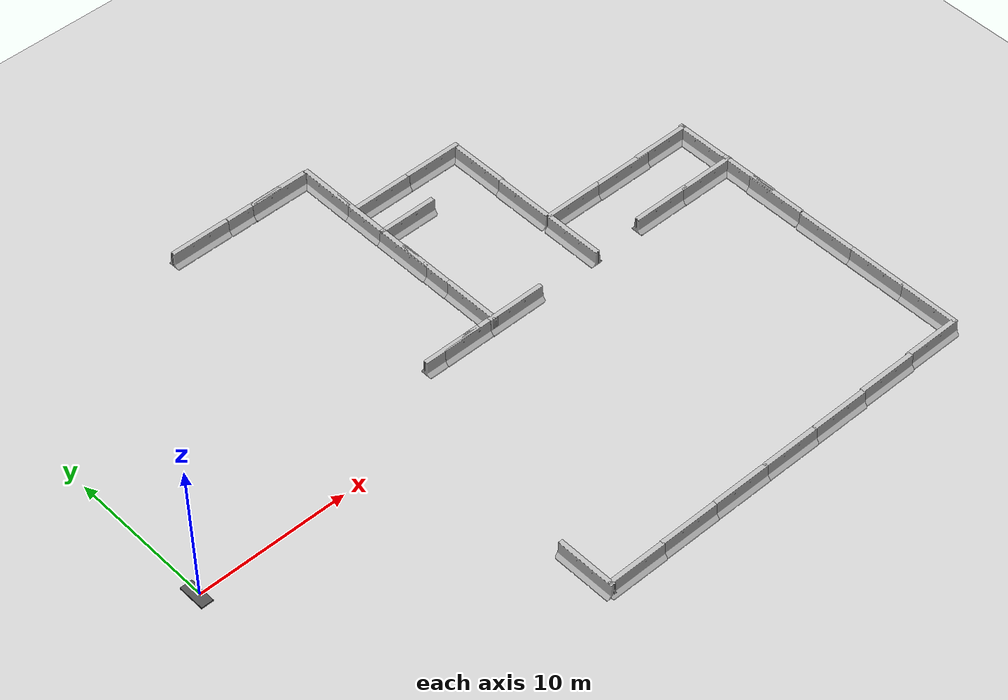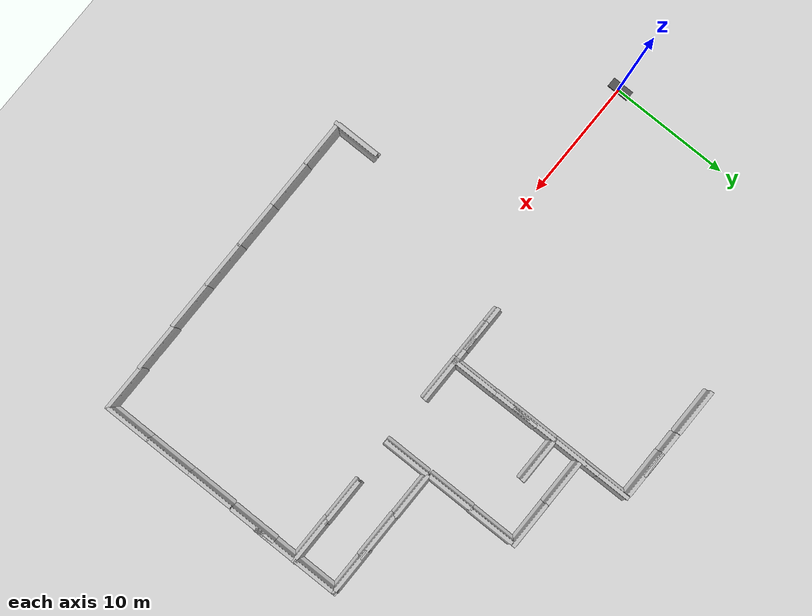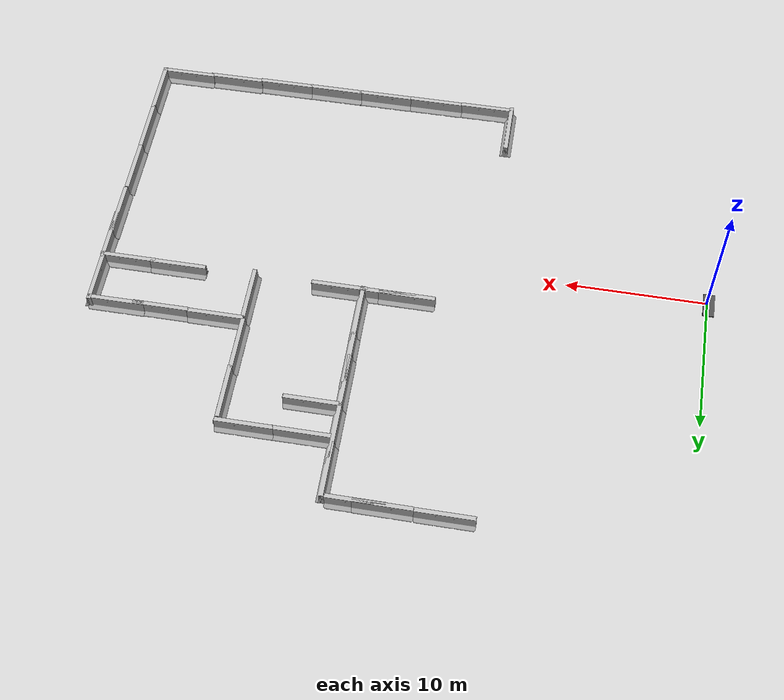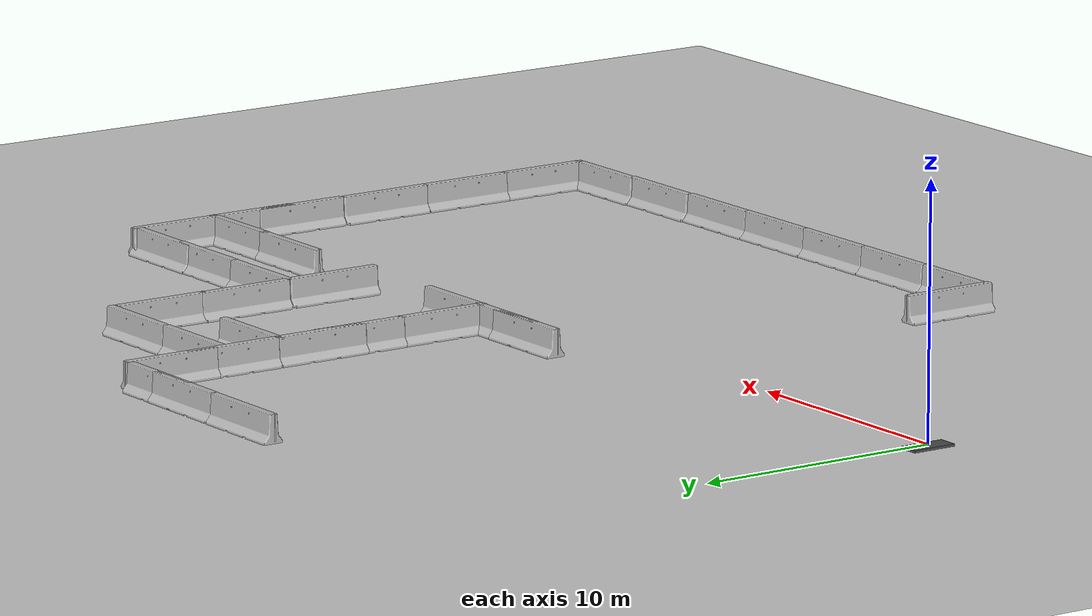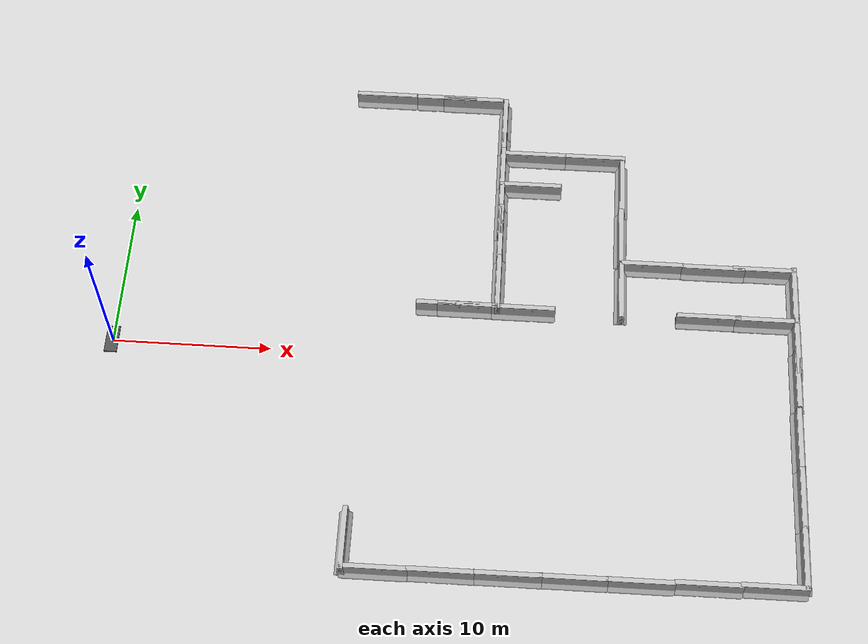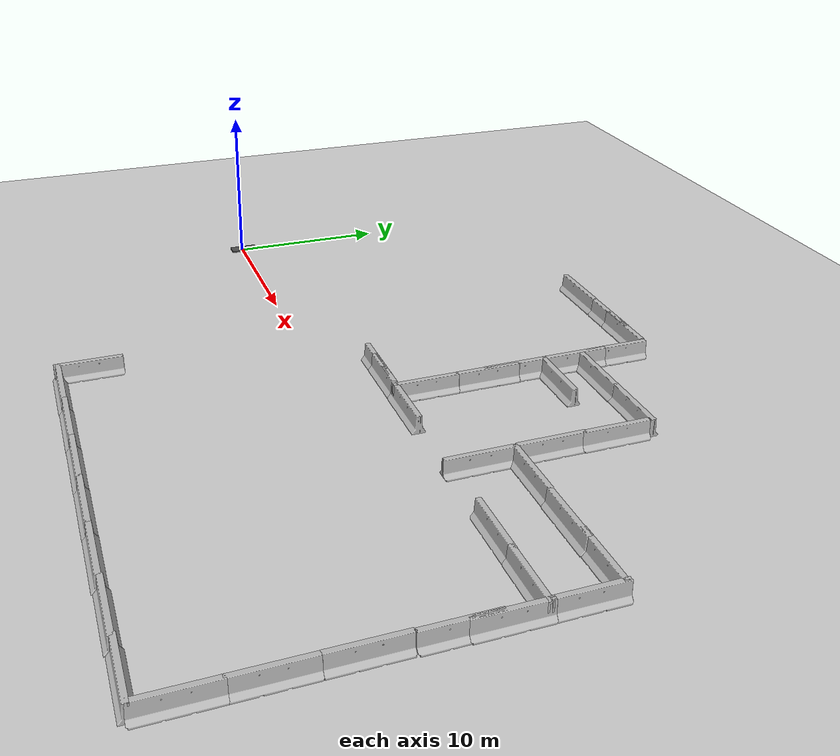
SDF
<sdf version="1.7">
 <world name="default">
  <model name="ground_plane">
   <static>1</static>
   <link name="link">
    <collision name="collision">
     <geometry><plane><normal>0 0 1</normal><size>100 100</size></plane></geometry>
     <surface><friction><ode><mu>100</mu><mu2>50</mu2></ode></friction></surface>
    </collision>
    <visual name="visual">
     <cast_shadows>0</cast_shadows>
     <geometry><plane><normal>0 0 1</normal><size>100 100</size></plane></geometry>
     <material>
      <script><uri>file://media/materials/scripts/gazebo.material</uri><name>Gazebo/Grey</name></script>
     </material>
    </visual>
   </link>
  </model>
  <model name="asphalt_plane">
   <static>1</static>
   <link name="link">
    <collision name="collision"><geometry><box><size>0.799213 1.82438 0.1</size></box></geometry></collision>
    <visual name="visual">
     <cast_shadows>0</cast_shadows>
     <geometry><box><size>0.799213 1.82438 0.1</size></box></geometry>
     <material>
      <script>
       <uri>model://asphalt_plane/materials/scripts</uri>
       <uri>model://asphalt_plane/materials/textures</uri>
       <name>vrc/asphalt</name>
      </script>
     </material>
    </visual>
   </link>
   <pose>-0.129245 0.109771 0 0 -0 0</pose>
  </model>
  <model name="jersey_barrier_clone_0_clone_0_clone_0">
   <static>1</static>
   <link name="link">
    <visual name="visual">
     <geometry><mesh><uri>model://jersey_barrier/meshes/jersey_barrier.dae</uri></mesh></geometry>
    </visual>
    <collision name="upright">
     <pose>0 0 0.5715 0 -0 0</pose>
     <geometry><box><size>4.06542 0.3063 1.143</size></box></geometry>
    </collision>
    <collision name="base">
     <pose>0 0 0.032258 0 -0 0</pose>
     <geometry><box><size>4.06542 0.8107 0.064516</size></box></geometry>
    </collision>
    <collision name="base2">
     <pose>0 0 0.1 0 -0 0</pose>
     <geometry><box><size>4.06542 0.65 0.1</size></box></geometry>
    </collision>
    <collision name="base3">
     <pose>0 0 0.2 0 -0 0</pose>
     <geometry><box><size>4.06542 0.5 0.1</size></box></geometry>
    </collision>
    <collision name="left-angle">
     <pose>0 -0.224 0.2401 0.9 -0 0</pose>
     <geometry><box><size>4.06542 0.5 0.064516</size></box></geometry>
    </collision>
    <collision name="right-angle">
     <pose>0 0.224 0.2401 -0.9 0 0</pose>
     <geometry><box><size>4.06542 0.5 0.064516</size></box></geometry>
    </collision>
   </link>
   <pose>15.7986 -12.9502 0 0 0 -1.56339</pose>
  </model>
  <model name="jersey_barrier_clone_0_clone_4_clone">
   <static>1</static>
   <link name="link">
    <visual name="visual">
     <geometry><mesh><uri>model://jersey_barrier/meshes/jersey_barrier.dae</uri></mesh></geometry>
    </visual>
    <collision name="upright">
     <pose>0 0 0.5715 0 -0 0</pose>
     <geometry><box><size>4.06542 0.3063 1.143</size></box></geometry>
    </collision>
    <collision name="base">
     <pose>0 0 0.032258 0 -0 0</pose>
     <geometry><box><size>4.06542 0.8107 0.064516</size></box></geometry>
    </collision>
    <collision name="base2">
     <pose>0 0 0.1 0 -0 0</pose>
     <geometry><box><size>4.06542 0.65 0.1</size></box></geometry>
    </collision>
    <collision name="base3">
     <pose>0 0 0.2 0 -0 0</pose>
     <geometry><box><size>4.06542 0.5 0.1</size></box></geometry>
    </collision>
    <collision name="left-angle">
     <pose>0 -0.224 0.2401 0.9 -0 0</pose>
     <geometry><box><size>4.06542 0.5 0.064516</size></box></geometry>
    </collision>
    <collision name="right-angle">
     <pose>0 0.224 0.2401 -0.9 0 0</pose>
     <geometry><box><size>4.06542 0.5 0.064516</size></box></geometry>
    </collision>
   </link>
   <pose>17.705 -14.7157 0 0 -0 0</pose>
  </model>
  <model name="jersey_barrier_clone_0_clone_4_clone_0">
   <static>1</static>
   <link name="link">
    <visual name="visual">
     <geometry><mesh><uri>model://jersey_barrier/meshes/jersey_barrier.dae</uri></mesh></geometry>
    </visual>
    <collision name="upright">
     <pose>0 0 0.5715 0 -0 0</pose>
     <geometry><box><size>4.06542 0.3063 1.143</size></box></geometry>
    </collision>
    <collision name="base">
     <pose>0 0 0.032258 0 -0 0</pose>
     <geometry><box><size>4.06542 0.8107 0.064516</size></box></geometry>
    </collision>
    <collision name="base2">
     <pose>0 0 0.1 0 -0 0</pose>
     <geometry><box><size>4.06542 0.65 0.1</size></box></geometry>
    </collision>
    <collision name="base3">
     <pose>0 0 0.2 0 -0 0</pose>
     <geometry><box><size>4.06542 0.5 0.1</size></box></geometry>
    </collision>
    <collision name="left-angle">
     <pose>0 -0.224 0.2401 0.9 -0 0</pose>
     <geometry><box><size>4.06542 0.5 0.064516</size></box></geometry>
    </collision>
    <collision name="right-angle">
     <pose>0 0.224 0.2401 -0.9 0 0</pose>
     <geometry><box><size>4.06542 0.5 0.064516</size></box></geometry>
    </collision>
   </link>
   <pose>21.6479 -14.684 0 0 -0 0</pose>
  </model>
  <model name="jersey_barrier_clone_0_clone_4_clone_1">
   <static>1</static>
   <link name="link">
    <visual name="visual">
     <geometry><mesh><uri>model://jersey_barrier/meshes/jersey_barrier.dae</uri></mesh></geometry>
    </visual>
    <collision name="upright">
     <pose>0 0 0.5715 0 -0 0</pose>
     <geometry><box><size>4.06542 0.3063 1.143</size></box></geometry>
    </collision>
    <collision name="base">
     <pose>0 0 0.032258 0 -0 0</pose>
     <geometry><box><size>4.06542 0.8107 0.064516</size></box></geometry>
    </collision>
    <collision name="base2">
     <pose>0 0 0.1 0 -0 0</pose>
     <geometry><box><size>4.06542 0.65 0.1</size></box></geometry>
    </collision>
    <collision name="base3">
     <pose>0 0 0.2 0 -0 0</pose>
     <geometry><box><size>4.06542 0.5 0.1</size></box></geometry>
    </collision>
    <collision name="left-angle">
     <pose>0 -0.224 0.2401 0.9 -0 0</pose>
     <geometry><box><size>4.06542 0.5 0.064516</size></box></geometry>
    </collision>
    <collision name="right-angle">
     <pose>0 0.224 0.2401 -0.9 0 0</pose>
     <geometry><box><size>4.06542 0.5 0.064516</size></box></geometry>
    </collision>
   </link>
   <pose>25.6132 -14.6676 0 0 -0 0</pose>
  </model>
  <model name="jersey_barrier_clone_0_clone_4_clone_2">
   <static>1</static>
   <link name="link">
    <visual name="visual">
     <geometry><mesh><uri>model://jersey_barrier/meshes/jersey_barrier.dae</uri></mesh></geometry>
    </visual>
    <collision name="upright">
     <pose>0 0 0.5715 0 -0 0</pose>
     <geometry><box><size>4.06542 0.3063 1.143</size></box></geometry>
    </collision>
    <collision name="base">
     <pose>0 0 0.032258 0 -0 0</pose>
     <geometry><box><size>4.06542 0.8107 0.064516</size></box></geometry>
    </collision>
    <collision name="base2">
     <pose>0 0 0.1 0 -0 0</pose>
     <geometry><box><size>4.06542 0.65 0.1</size></box></geometry>
    </collision>
    <collision name="base3">
     <pose>0 0 0.2 0 -0 0</pose>
     <geometry><box><size>4.06542 0.5 0.1</size></box></geometry>
    </collision>
    <collision name="left-angle">
     <pose>0 -0.224 0.2401 0.9 -0 0</pose>
     <geometry><box><size>4.06542 0.5 0.064516</size></box></geometry>
    </collision>
    <collision name="right-angle">
     <pose>0 0.224 0.2401 -0.9 0 0</pose>
     <geometry><box><size>4.06542 0.5 0.064516</size></box></geometry>
    </collision>
   </link>
   <pose>29.4672 -14.6534 0 0 -0 0</pose>
  </model>
  <model name="jersey_barrier_clone_0_clone_4_clone_3">
   <static>1</static>
   <link name="link">
    <visual name="visual">
     <geometry><mesh><uri>model://jersey_barrier/meshes/jersey_barrier.dae</uri></mesh></geometry>
    </visual>
    <collision name="upright">
     <pose>0 0 0.5715 0 -0 0</pose>
     <geometry><box><size>4.06542 0.3063 1.143</size></box></geometry>
    </collision>
    <collision name="base">
     <pose>0 0 0.032258 0 -0 0</pose>
     <geometry><box><size>4.06542 0.8107 0.064516</size></box></geometry>
    </collision>
    <collision name="base2">
     <pose>0 0 0.1 0 -0 0</pose>
     <geometry><box><size>4.06542 0.65 0.1</size></box></geometry>
    </collision>
    <collision name="base3">
     <pose>0 0 0.2 0 -0 0</pose>
     <geometry><box><size>4.06542 0.5 0.1</size></box></geometry>
    </collision>
    <collision name="left-angle">
     <pose>0 -0.224 0.2401 0.9 -0 0</pose>
     <geometry><box><size>4.06542 0.5 0.064516</size></box></geometry>
    </collision>
    <collision name="right-angle">
     <pose>0 0.224 0.2401 -0.9 0 0</pose>
     <geometry><box><size>4.06542 0.5 0.064516</size></box></geometry>
    </collision>
   </link>
   <pose>33.3765 -14.6389 0 0 -0 0</pose>
  </model>
  <model name="jersey_barrier_clone_0_clone_4_clone_3_clone">
   <static>1</static>
   <link name="link">
    <visual name="visual">
     <geometry><mesh><uri>model://jersey_barrier/meshes/jersey_barrier.dae</uri></mesh></geometry>
    </visual>
    <collision name="upright">
     <pose>0 0 0.5715 0 -0 0</pose>
     <geometry><box><size>4.06542 0.3063 1.143</size></box></geometry>
    </collision>
    <collision name="base">
     <pose>0 0 0.032258 0 -0 0</pose>
     <geometry><box><size>4.06542 0.8107 0.064516</size></box></geometry>
    </collision>
    <collision name="base2">
     <pose>0 0 0.1 0 -0 0</pose>
     <geometry><box><size>4.06542 0.65 0.1</size></box></geometry>
    </collision>
    <collision name="base3">
     <pose>0 0 0.2 0 -0 0</pose>
     <geometry><box><size>4.06542 0.5 0.1</size></box></geometry>
    </collision>
    <collision name="left-angle">
     <pose>0 -0.224 0.2401 0.9 -0 0</pose>
     <geometry><box><size>4.06542 0.5 0.064516</size></box></geometry>
    </collision>
    <collision name="right-angle">
     <pose>0 0.224 0.2401 -0.9 0 0</pose>
     <geometry><box><size>4.06542 0.5 0.064516</size></box></geometry>
    </collision>
   </link>
   <pose>37.3448 -14.5673 0 0 -0 0</pose>
  </model>
  <model name="jersey_barrier_clone_0_clone_4_clone_4">
   <static>1</static>
   <link name="link">
    <visual name="visual">
     <geometry><mesh><uri>model://jersey_barrier/meshes/jersey_barrier.dae</uri></mesh></geometry>
    </visual>
    <collision name="upright">
     <pose>0 0 0.5715 0 -0 0</pose>
     <geometry><box><size>4.06542 0.3063 1.143</size></box></geometry>
    </collision>
    <collision name="base">
     <pose>0 0 0.032258 0 -0 0</pose>
     <geometry><box><size>4.06542 0.8107 0.064516</size></box></geometry>
    </collision>
    <collision name="base2">
     <pose>0 0 0.1 0 -0 0</pose>
     <geometry><box><size>4.06542 0.65 0.1</size></box></geometry>
    </collision>
    <collision name="base3">
     <pose>0 0 0.2 0 -0 0</pose>
     <geometry><box><size>4.06542 0.5 0.1</size></box></geometry>
    </collision>
    <collision name="left-angle">
     <pose>0 -0.224 0.2401 0.9 -0 0</pose>
     <geometry><box><size>4.06542 0.5 0.064516</size></box></geometry>
    </collision>
    <collision name="right-angle">
     <pose>0 0.224 0.2401 -0.9 0 0</pose>
     <geometry><box><size>4.06542 0.5 0.064516</size></box></geometry>
    </collision>
   </link>
   <pose>41.169 -14.4988 0 0 -0 0</pose>
  </model>
  <model name="jersey_barrier_clone_0_clone_4_clone_6">
   <static>1</static>
   <link name="link">
    <visual name="visual">
     <geometry><mesh><uri>model://jersey_barrier/meshes/jersey_barrier.dae</uri></mesh></geometry>
    </visual>
    <collision name="upright">
     <pose>0 0 0.5715 0 -0 0</pose>
     <geometry><box><size>4.06542 0.3063 1.143</size></box></geometry>
    </collision>
    <collision name="base">
     <pose>0 0 0.032258 0 -0 0</pose>
     <geometry><box><size>4.06542 0.8107 0.064516</size></box></geometry>
    </collision>
    <collision name="base2">
     <pose>0 0 0.1 0 -0 0</pose>
     <geometry><box><size>4.06542 0.65 0.1</size></box></geometry>
    </collision>
    <collision name="base3">
     <pose>0 0 0.2 0 -0 0</pose>
     <geometry><box><size>4.06542 0.5 0.1</size></box></geometry>
    </collision>
    <collision name="left-angle">
     <pose>0 -0.224 0.2401 0.9 -0 0</pose>
     <geometry><box><size>4.06542 0.5 0.064516</size></box></geometry>
    </collision>
    <collision name="right-angle">
     <pose>0 0.224 0.2401 -0.9 0 0</pose>
     <geometry><box><size>4.06542 0.5 0.064516</size></box></geometry>
    </collision>
   </link>
   <pose>41.1611 3.41587 0 0 -0 0</pose>
  </model>
  <model name="jersey_barrier_clone_0_clone_4_clone_7">
   <static>1</static>
   <link name="link">
    <visual name="visual">
     <geometry><mesh><uri>model://jersey_barrier/meshes/jersey_barrier.dae</uri></mesh></geometry>
    </visual>
    <collision name="upright">
     <pose>0 0 0.5715 0 -0 0</pose>
     <geometry><box><size>4.06542 0.3063 1.143</size></box></geometry>
    </collision>
    <collision name="base">
     <pose>0 0 0.032258 0 -0 0</pose>
     <geometry><box><size>4.06542 0.8107 0.064516</size></box></geometry>
    </collision>
    <collision name="base2">
     <pose>0 0 0.1 0 -0 0</pose>
     <geometry><box><size>4.06542 0.65 0.1</size></box></geometry>
    </collision>
    <collision name="base3">
     <pose>0 0 0.2 0 -0 0</pose>
     <geometry><box><size>4.06542 0.5 0.1</size></box></geometry>
    </collision>
    <collision name="left-angle">
     <pose>0 -0.224 0.2401 0.9 -0 0</pose>
     <geometry><box><size>4.06542 0.5 0.064516</size></box></geometry>
    </collision>
    <collision name="right-angle">
     <pose>0 0.224 0.2401 -0.9 0 0</pose>
     <geometry><box><size>4.06542 0.5 0.064516</size></box></geometry>
    </collision>
   </link>
   <pose>37.4892 3.43491 0 0 -0 0</pose>
  </model>
  <model name="jersey_barrier_clone_0_clone_0_clone_0_clone_0_clone">
   <static>1</static>
   <link name="link">
    <visual name="visual">
     <geometry><mesh><uri>model://jersey_barrier/meshes/jersey_barrier.dae</uri></mesh></geometry>
    </visual>
    <collision name="upright">
     <pose>0 0 0.5715 0 -0 0</pose>
     <geometry><box><size>4.06542 0.3063 1.143</size></box></geometry>
    </collision>
    <collision name="base">
     <pose>0 0 0.032258 0 -0 0</pose>
     <geometry><box><size>4.06542 0.8107 0.064516</size></box></geometry>
    </collision>
    <collision name="base2">
     <pose>0 0 0.1 0 -0 0</pose>
     <geometry><box><size>4.06542 0.65 0.1</size></box></geometry>
    </collision>
    <collision name="base3">
     <pose>0 0 0.2 0 -0 0</pose>
     <geometry><box><size>4.06542 0.5 0.1</size></box></geometry>
    </collision>
    <collision name="left-angle">
     <pose>0 -0.224 0.2401 0.9 -0 0</pose>
     <geometry><box><size>4.06542 0.5 0.064516</size></box></geometry>
    </collision>
    <collision name="right-angle">
     <pose>0 0.224 0.2401 -0.9 0 0</pose>
     <geometry><box><size>4.06542 0.5 0.064516</size></box></geometry>
    </collision>
   </link>
   <pose>43.0252 -12.5774 0 0 0 -1.56339</pose>
  </model>
  <model name="jersey_barrier_clone_0_clone_0_clone_0_clone_0_clone_0">
   <static>1</static>
   <link name="link">
    <visual name="visual">
     <geometry><mesh><uri>model://jersey_barrier/meshes/jersey_barrier.dae</uri></mesh></geometry>
    </visual>
    <collision name="upright">
     <pose>0 0 0.5715 0 -0 0</pose>
     <geometry><box><size>4.06542 0.3063 1.143</size></box></geometry>
    </collision>
    <collision name="base">
     <pose>0 0 0.032258 0 -0 0</pose>
     <geometry><box><size>4.06542 0.8107 0.064516</size></box></geometry>
    </collision>
    <collision name="base2">
     <pose>0 0 0.1 0 -0 0</pose>
     <geometry><box><size>4.06542 0.65 0.1</size></box></geometry>
    </collision>
    <collision name="base3">
     <pose>0 0 0.2 0 -0 0</pose>
     <geometry><box><size>4.06542 0.5 0.1</size></box></geometry>
    </collision>
    <collision name="left-angle">
     <pose>0 -0.224 0.2401 0.9 -0 0</pose>
     <geometry><box><size>4.06542 0.5 0.064516</size></box></geometry>
    </collision>
    <collision name="right-angle">
     <pose>0 0.224 0.2401 -0.9 0 0</pose>
     <geometry><box><size>4.06542 0.5 0.064516</size></box></geometry>
    </collision>
   </link>
   <pose>42.9941 -8.71312 0 0 0 -1.56339</pose>
  </model>
  <model name="jersey_barrier_clone_0_clone_0_clone_0_clone_0_clone_1">
   <static>1</static>
   <link name="link">
    <visual name="visual">
     <geometry><mesh><uri>model://jersey_barrier/meshes/jersey_barrier.dae</uri></mesh></geometry>
    </visual>
    <collision name="upright">
     <pose>0 0 0.5715 0 -0 0</pose>
     <geometry><box><size>4.06542 0.3063 1.143</size></box></geometry>
    </collision>
    <collision name="base">
     <pose>0 0 0.032258 0 -0 0</pose>
     <geometry><box><size>4.06542 0.8107 0.064516</size></box></geometry>
    </collision>
    <collision name="base2">
     <pose>0 0 0.1 0 -0 0</pose>
     <geometry><box><size>4.06542 0.65 0.1</size></box></geometry>
    </collision>
    <collision name="base3">
     <pose>0 0 0.2 0 -0 0</pose>
     <geometry><box><size>4.06542 0.5 0.1</size></box></geometry>
    </collision>
    <collision name="left-angle">
     <pose>0 -0.224 0.2401 0.9 -0 0</pose>
     <geometry><box><size>4.06542 0.5 0.064516</size></box></geometry>
    </collision>
    <collision name="right-angle">
     <pose>0 0.224 0.2401 -0.9 0 0</pose>
     <geometry><box><size>4.06542 0.5 0.064516</size></box></geometry>
    </collision>
   </link>
   <pose>42.9568 -4.73014 0 0 0 -1.56339</pose>
  </model>
  <model name="jersey_barrier_clone_0_clone_0_clone_0_clone_0_clone_2">
   <static>1</static>
   <link name="link">
    <visual name="visual">
     <geometry><mesh><uri>model://jersey_barrier/meshes/jersey_barrier.dae</uri></mesh></geometry>
    </visual>
    <collision name="upright">
     <pose>0 0 0.5715 0 -0 0</pose>
     <geometry><box><size>4.06542 0.3063 1.143</size></box></geometry>
    </collision>
    <collision name="base">
     <pose>0 0 0.032258 0 -0 0</pose>
     <geometry><box><size>4.06542 0.8107 0.064516</size></box></geometry>
    </collision>
    <collision name="base2">
     <pose>0 0 0.1 0 -0 0</pose>
     <geometry><box><size>4.06542 0.65 0.1</size></box></geometry>
    </collision>
    <collision name="base3">
     <pose>0 0 0.2 0 -0 0</pose>
     <geometry><box><size>4.06542 0.5 0.1</size></box></geometry>
    </collision>
    <collision name="left-angle">
     <pose>0 -0.224 0.2401 0.9 -0 0</pose>
     <geometry><box><size>4.06542 0.5 0.064516</size></box></geometry>
    </collision>
    <collision name="right-angle">
     <pose>0 0.224 0.2401 -0.9 0 0</pose>
     <geometry><box><size>4.06542 0.5 0.064516</size></box></geometry>
    </collision>
   </link>
   <pose>42.9791 -0.627617 0 0 0 -1.56339</pose>
  </model>
  <model name="jersey_barrier_clone_0_clone_0_clone_0_clone_0_clone_3">
   <static>1</static>
   <link name="link">
    <visual name="visual">
     <geometry><mesh><uri>model://jersey_barrier/meshes/jersey_barrier.dae</uri></mesh></geometry>
    </visual>
    <collision name="upright">
     <pose>0 0 0.5715 0 -0 0</pose>
     <geometry><box><size>4.06542 0.3063 1.143</size></box></geometry>
    </collision>
    <collision name="base">
     <pose>0 0 0.032258 0 -0 0</pose>
     <geometry><box><size>4.06542 0.8107 0.064516</size></box></geometry>
    </collision>
    <collision name="base2">
     <pose>0 0 0.1 0 -0 0</pose>
     <geometry><box><size>4.06542 0.65 0.1</size></box></geometry>
    </collision>
    <collision name="base3">
     <pose>0 0 0.2 0 -0 0</pose>
     <geometry><box><size>4.06542 0.5 0.1</size></box></geometry>
    </collision>
    <collision name="left-angle">
     <pose>0 -0.224 0.2401 0.9 -0 0</pose>
     <geometry><box><size>4.06542 0.5 0.064516</size></box></geometry>
    </collision>
    <collision name="right-angle">
     <pose>0 0.224 0.2401 -0.9 0 0</pose>
     <geometry><box><size>4.06542 0.5 0.064516</size></box></geometry>
    </collision>
   </link>
   <pose>43.0136 1.69115 0 0 0 -1.56339</pose>
  </model>
  <model name="jersey_barrier_clone_0_clone_0_clone_0_clone_0_clone_2_clone">
   <static>1</static>
   <link name="link">
    <visual name="visual">
     <geometry><mesh><uri>model://jersey_barrier/meshes/jersey_barrier.dae</uri></mesh></geometry>
    </visual>
    <collision name="upright">
     <pose>0 0 0.5715 0 -0 0</pose>
     <geometry><box><size>4.06542 0.3063 1.143</size></box></geometry>
    </collision>
    <collision name="base">
     <pose>0 0 0.032258 0 -0 0</pose>
     <geometry><box><size>4.06542 0.8107 0.064516</size></box></geometry>
    </collision>
    <collision name="base2">
     <pose>0 0 0.1 0 -0 0</pose>
     <geometry><box><size>4.06542 0.65 0.1</size></box></geometry>
    </collision>
    <collision name="base3">
     <pose>0 0 0.2 0 -0 0</pose>
     <geometry><box><size>4.06542 0.5 0.1</size></box></geometry>
    </collision>
    <collision name="left-angle">
     <pose>0 -0.224 0.2401 0.9 -0 0</pose>
     <geometry><box><size>4.06542 0.5 0.064516</size></box></geometry>
    </collision>
    <collision name="right-angle">
     <pose>0 0.224 0.2401 -0.9 0 0</pose>
     <geometry><box><size>4.06542 0.5 0.064516</size></box></geometry>
    </collision>
   </link>
   <pose>42.9652 5.36529 0 0 0 -1.56339</pose>
  </model>
  <model name="jersey_barrier_clone_0_clone_4_clone_7_clone">
   <static>1</static>
   <link name="link">
    <visual name="visual">
     <geometry><mesh><uri>model://jersey_barrier/meshes/jersey_barrier.dae</uri></mesh></geometry>
    </visual>
    <collision name="upright">
     <pose>0 0 0.5715 0 -0 0</pose>
     <geometry><box><size>4.06542 0.3063 1.143</size></box></geometry>
    </collision>
    <collision name="base">
     <pose>0 0 0.032258 0 -0 0</pose>
     <geometry><box><size>4.06542 0.8107 0.064516</size></box></geometry>
    </collision>
    <collision name="base2">
     <pose>0 0 0.1 0 -0 0</pose>
     <geometry><box><size>4.06542 0.65 0.1</size></box></geometry>
    </collision>
    <collision name="base3">
     <pose>0 0 0.2 0 -0 0</pose>
     <geometry><box><size>4.06542 0.5 0.1</size></box></geometry>
    </collision>
    <collision name="left-angle">
     <pose>0 -0.224 0.2401 0.9 -0 0</pose>
     <geometry><box><size>4.06542 0.5 0.064516</size></box></geometry>
    </collision>
    <collision name="right-angle">
     <pose>0 0.224 0.2401 -0.9 0 0</pose>
     <geometry><box><size>4.06542 0.5 0.064516</size></box></geometry>
    </collision>
   </link>
   <pose>33.8913 7.13913 0 0 -0 0</pose>
  </model>
  <model name="jersey_barrier_clone_0_clone_0_clone_0_clone_0_clone_2_clone_clone">
   <static>1</static>
   <link name="link">
    <visual name="visual">
     <geometry><mesh><uri>model://jersey_barrier/meshes/jersey_barrier.dae</uri></mesh></geometry>
    </visual>
    <collision name="upright">
     <pose>0 0 0.5715 0 -0 0</pose>
     <geometry><box><size>4.06542 0.3063 1.143</size></box></geometry>
    </collision>
    <collision name="base">
     <pose>0 0 0.032258 0 -0 0</pose>
     <geometry><box><size>4.06542 0.8107 0.064516</size></box></geometry>
    </collision>
    <collision name="base2">
     <pose>0 0 0.1 0 -0 0</pose>
     <geometry><box><size>4.06542 0.65 0.1</size></box></geometry>
    </collision>
    <collision name="base3">
     <pose>0 0 0.2 0 -0 0</pose>
     <geometry><box><size>4.06542 0.5 0.1</size></box></geometry>
    </collision>
    <collision name="left-angle">
     <pose>0 -0.224 0.2401 0.9 -0 0</pose>
     <geometry><box><size>4.06542 0.5 0.064516</size></box></geometry>
    </collision>
    <collision name="right-angle">
     <pose>0 0.224 0.2401 -0.9 0 0</pose>
     <geometry><box><size>4.06542 0.5 0.064516</size></box></geometry>
    </collision>
   </link>
   <pose>31.945 5.08337 0 0 0 -1.56339</pose>
  </model>
  <model name="jersey_barrier_clone_0_clone_0_clone_0_clone_0_clone_2_clone_clone_0">
   <static>1</static>
   <link name="link">
    <visual name="visual">
     <geometry><mesh><uri>model://jersey_barrier/meshes/jersey_barrier.dae</uri></mesh></geometry>
    </visual>
    <collision name="upright">
     <pose>0 0 0.5715 0 -0 0</pose>
     <geometry><box><size>4.06542 0.3063 1.143</size></box></geometry>
    </collision>
    <collision name="base">
     <pose>0 0 0.032258 0 -0 0</pose>
     <geometry><box><size>4.06542 0.8107 0.064516</size></box></geometry>
    </collision>
    <collision name="base2">
     <pose>0 0 0.1 0 -0 0</pose>
     <geometry><box><size>4.06542 0.65 0.1</size></box></geometry>
    </collision>
    <collision name="base3">
     <pose>0 0 0.2 0 -0 0</pose>
     <geometry><box><size>4.06542 0.5 0.1</size></box></geometry>
    </collision>
    <collision name="left-angle">
     <pose>0 -0.224 0.2401 0.9 -0 0</pose>
     <geometry><box><size>4.06542 0.5 0.064516</size></box></geometry>
    </collision>
    <collision name="right-angle">
     <pose>0 0.224 0.2401 -0.9 0 0</pose>
     <geometry><box><size>4.06542 0.5 0.064516</size></box></geometry>
    </collision>
   </link>
   <pose>31.8669 9.24831 0 0 0 -1.56339</pose>
  </model>
  <model name="jersey_barrier_clone_0_clone_4_clone_7_clone_clone">
   <static>1</static>
   <link name="link">
    <visual name="visual">
     <geometry><mesh><uri>model://jersey_barrier/meshes/jersey_barrier.dae</uri></mesh></geometry>
    </visual>
    <collision name="upright">
     <pose>0 0 0.5715 0 -0 0</pose>
     <geometry><box><size>4.06542 0.3063 1.143</size></box></geometry>
    </collision>
    <collision name="base">
     <pose>0 0 0.032258 0 -0 0</pose>
     <geometry><box><size>4.06542 0.8107 0.064516</size></box></geometry>
    </collision>
    <collision name="base2">
     <pose>0 0 0.1 0 -0 0</pose>
     <geometry><box><size>4.06542 0.65 0.1</size></box></geometry>
    </collision>
    <collision name="base3">
     <pose>0 0 0.2 0 -0 0</pose>
     <geometry><box><size>4.06542 0.5 0.1</size></box></geometry>
    </collision>
    <collision name="left-angle">
     <pose>0 -0.224 0.2401 0.9 -0 0</pose>
     <geometry><box><size>4.06542 0.5 0.064516</size></box></geometry>
    </collision>
    <collision name="right-angle">
     <pose>0 0.224 0.2401 -0.9 0 0</pose>
     <geometry><box><size>4.06542 0.5 0.064516</size></box></geometry>
    </collision>
   </link>
   <pose>37.8213 7.10404 0 0 -0 0</pose>
  </model>
  <model name="jersey_barrier_clone_0_clone_4_clone_7_clone_clone_clone">
   <static>1</static>
   <link name="link">
    <visual name="visual">
     <geometry><mesh><uri>model://jersey_barrier/meshes/jersey_barrier.dae</uri></mesh></geometry>
    </visual>
    <collision name="upright">
     <pose>0 0 0.5715 0 -0 0</pose>
     <geometry><box><size>4.06542 0.3063 1.143</size></box></geometry>
    </collision>
    <collision name="base">
     <pose>0 0 0.032258 0 -0 0</pose>
     <geometry><box><size>4.06542 0.8107 0.064516</size></box></geometry>
    </collision>
    <collision name="base2">
     <pose>0 0 0.1 0 -0 0</pose>
     <geometry><box><size>4.06542 0.65 0.1</size></box></geometry>
    </collision>
    <collision name="base3">
     <pose>0 0 0.2 0 -0 0</pose>
     <geometry><box><size>4.06542 0.5 0.1</size></box></geometry>
    </collision>
    <collision name="left-angle">
     <pose>0 -0.224 0.2401 0.9 -0 0</pose>
     <geometry><box><size>4.06542 0.5 0.064516</size></box></geometry>
    </collision>
    <collision name="right-angle">
     <pose>0 0.224 0.2401 -0.9 0 0</pose>
     <geometry><box><size>4.06542 0.5 0.064516</size></box></geometry>
    </collision>
   </link>
   <pose>41.0499 7.14349 0 0 -0 0</pose>
  </model>
  <model name="jersey_barrier_clone_0_clone_4_clone_7_clone_2">
   <static>1</static>
   <link name="link">
    <visual name="visual">
     <geometry><mesh><uri>model://jersey_barrier/meshes/jersey_barrier.dae</uri></mesh></geometry>
    </visual>
    <collision name="upright">
     <pose>0 0 0.5715 0 -0 0</pose>
     <geometry><box><size>4.06542 0.3063 1.143</size></box></geometry>
    </collision>
    <collision name="base">
     <pose>0 0 0.032258 0 -0 0</pose>
     <geometry><box><size>4.06542 0.8107 0.064516</size></box></geometry>
    </collision>
    <collision name="base2">
     <pose>0 0 0.1 0 -0 0</pose>
     <geometry><box><size>4.06542 0.65 0.1</size></box></geometry>
    </collision>
    <collision name="base3">
     <pose>0 0 0.2 0 -0 0</pose>
     <geometry><box><size>4.06542 0.5 0.1</size></box></geometry>
    </collision>
    <collision name="left-angle">
     <pose>0 -0.224 0.2401 0.9 -0 0</pose>
     <geometry><box><size>4.06542 0.5 0.064516</size></box></geometry>
    </collision>
    <collision name="right-angle">
     <pose>0 0.224 0.2401 -0.9 0 0</pose>
     <geometry><box><size>4.06542 0.5 0.064516</size></box></geometry>
    </collision>
   </link>
   <pose>22.3145 3.42564 0 0 -0 0</pose>
  </model>
  <model name="jersey_barrier_clone_0_clone_4_clone_7_clone_3">
   <static>1</static>
   <link name="link">
    <visual name="visual">
     <geometry><mesh><uri>model://jersey_barrier/meshes/jersey_barrier.dae</uri></mesh></geometry>
    </visual>
    <collision name="upright">
     <pose>0 0 0.5715 0 -0 0</pose>
     <geometry><box><size>4.06542 0.3063 1.143</size></box></geometry>
    </collision>
    <collision name="base">
     <pose>0 0 0.032258 0 -0 0</pose>
     <geometry><box><size>4.06542 0.8107 0.064516</size></box></geometry>
    </collision>
    <collision name="base2">
     <pose>0 0 0.1 0 -0 0</pose>
     <geometry><box><size>4.06542 0.65 0.1</size></box></geometry>
    </collision>
    <collision name="base3">
     <pose>0 0 0.2 0 -0 0</pose>
     <geometry><box><size>4.06542 0.5 0.1</size></box></geometry>
    </collision>
    <collision name="left-angle">
     <pose>0 -0.224 0.2401 0.9 -0 0</pose>
     <geometry><box><size>4.06542 0.5 0.064516</size></box></geometry>
    </collision>
    <collision name="right-angle">
     <pose>0 0.224 0.2401 -0.9 0 0</pose>
     <geometry><box><size>4.06542 0.5 0.064516</size></box></geometry>
    </collision>
   </link>
   <pose>20.9783 3.43296 0 0 -0 0</pose>
  </model>
  <model name="jersey_barrier_clone_0_clone_4_clone_7_clone_2_clone">
   <static>1</static>
   <link name="link">
    <visual name="visual">
     <geometry><mesh><uri>model://jersey_barrier/meshes/jersey_barrier.dae</uri></mesh></geometry>
    </visual>
    <collision name="upright">
     <pose>0 0 0.5715 0 -0 0</pose>
     <geometry><box><size>4.06542 0.3063 1.143</size></box></geometry>
    </collision>
    <collision name="base">
     <pose>0 0 0.032258 0 -0 0</pose>
     <geometry><box><size>4.06542 0.8107 0.064516</size></box></geometry>
    </collision>
    <collision name="base2">
     <pose>0 0 0.1 0 -0 0</pose>
     <geometry><box><size>4.06542 0.65 0.1</size></box></geometry>
    </collision>
    <collision name="base3">
     <pose>0 0 0.2 0 -0 0</pose>
     <geometry><box><size>4.06542 0.5 0.1</size></box></geometry>
    </collision>
    <collision name="left-angle">
     <pose>0 -0.224 0.2401 0.9 -0 0</pose>
     <geometry><box><size>4.06542 0.5 0.064516</size></box></geometry>
    </collision>
    <collision name="right-angle">
     <pose>0 0.224 0.2401 -0.9 0 0</pose>
     <geometry><box><size>4.06542 0.5 0.064516</size></box></geometry>
    </collision>
   </link>
   <pose>25.7615 3.40379 0 0 -0 0</pose>
  </model>
  <model name="jersey_barrier_clone_0_clone_0_clone_0_clone_0_clone_2_clone_clone_clone">
   <static>1</static>
   <link name="link">
    <visual name="visual">
     <geometry><mesh><uri>model://jersey_barrier/meshes/jersey_barrier.dae</uri></mesh></geometry>
    </visual>
    <collision name="upright">
     <pose>0 0 0.5715 0 -0 0</pose>
     <geometry><box><size>4.06542 0.3063 1.143</size></box></geometry>
    </collision>
    <collision name="base">
     <pose>0 0 0.032258 0 -0 0</pose>
     <geometry><box><size>4.06542 0.8107 0.064516</size></box></geometry>
    </collision>
    <collision name="base2">
     <pose>0 0 0.1 0 -0 0</pose>
     <geometry><box><size>4.06542 0.65 0.1</size></box></geometry>
    </collision>
    <collision name="base3">
     <pose>0 0 0.2 0 -0 0</pose>
     <geometry><box><size>4.06542 0.5 0.1</size></box></geometry>
    </collision>
    <collision name="left-angle">
     <pose>0 -0.224 0.2401 0.9 -0 0</pose>
     <geometry><box><size>4.06542 0.5 0.064516</size></box></geometry>
    </collision>
    <collision name="right-angle">
     <pose>0 0.224 0.2401 -0.9 0 0</pose>
     <geometry><box><size>4.06542 0.5 0.064516</size></box></geometry>
    </collision>
   </link>
   <pose>24.0872 5.23734 0 0 0 -1.56339</pose>
  </model>
  <model name="jersey_barrier_clone_0_clone_0_clone_0_clone_0_clone_2_clone_clone_clone_0">
   <static>1</static>
   <link name="link">
    <visual name="visual">
     <geometry><mesh><uri>model://jersey_barrier/meshes/jersey_barrier.dae</uri></mesh></geometry>
    </visual>
    <collision name="upright">
     <pose>0 0 0.5715 0 -0 0</pose>
     <geometry><box><size>4.06542 0.3063 1.143</size></box></geometry>
    </collision>
    <collision name="base">
     <pose>0 0 0.032258 0 -0 0</pose>
     <geometry><box><size>4.06542 0.8107 0.064516</size></box></geometry>
    </collision>
    <collision name="base2">
     <pose>0 0 0.1 0 -0 0</pose>
     <geometry><box><size>4.06542 0.65 0.1</size></box></geometry>
    </collision>
    <collision name="base3">
     <pose>0 0 0.2 0 -0 0</pose>
     <geometry><box><size>4.06542 0.5 0.1</size></box></geometry>
    </collision>
    <collision name="left-angle">
     <pose>0 -0.224 0.2401 0.9 -0 0</pose>
     <geometry><box><size>4.06542 0.5 0.064516</size></box></geometry>
    </collision>
    <collision name="right-angle">
     <pose>0 0.224 0.2401 -0.9 0 0</pose>
     <geometry><box><size>4.06542 0.5 0.064516</size></box></geometry>
    </collision>
   </link>
   <pose>24.0423 9.11087 0 0 0 -1.56339</pose>
  </model>
  <model name="jersey_barrier_clone_0_clone_0_clone_0_clone_0_clone_2_clone_clone_clone_1">
   <static>1</static>
   <link name="link">
    <visual name="visual">
     <geometry><mesh><uri>model://jersey_barrier/meshes/jersey_barrier.dae</uri></mesh></geometry>
    </visual>
    <collision name="upright">
     <pose>0 0 0.5715 0 -0 0</pose>
     <geometry><box><size>4.06542 0.3063 1.143</size></box></geometry>
    </collision>
    <collision name="base">
     <pose>0 0 0.032258 0 -0 0</pose>
     <geometry><box><size>4.06542 0.8107 0.064516</size></box></geometry>
    </collision>
    <collision name="base2">
     <pose>0 0 0.1 0 -0 0</pose>
     <geometry><box><size>4.06542 0.65 0.1</size></box></geometry>
    </collision>
    <collision name="base3">
     <pose>0 0 0.2 0 -0 0</pose>
     <geometry><box><size>4.06542 0.5 0.1</size></box></geometry>
    </collision>
    <collision name="left-angle">
     <pose>0 -0.224 0.2401 0.9 -0 0</pose>
     <geometry><box><size>4.06542 0.5 0.064516</size></box></geometry>
    </collision>
    <collision name="right-angle">
     <pose>0 0.224 0.2401 -0.9 0 0</pose>
     <geometry><box><size>4.06542 0.5 0.064516</size></box></geometry>
    </collision>
   </link>
   <pose>23.9953 10.9121 0 0 0 -1.56339</pose>
  </model>
  <model name="jersey_barrier_clone_0_clone_0_clone_0_clone_0_clone_2_clone_clone_clone_2">
   <static>1</static>
   <link name="link">
    <visual name="visual">
     <geometry><mesh><uri>model://jersey_barrier/meshes/jersey_barrier.dae</uri></mesh></geometry>
    </visual>
    <collision name="upright">
     <pose>0 0 0.5715 0 -0 0</pose>
     <geometry><box><size>4.06542 0.3063 1.143</size></box></geometry>
    </collision>
    <collision name="base">
     <pose>0 0 0.032258 0 -0 0</pose>
     <geometry><box><size>4.06542 0.8107 0.064516</size></box></geometry>
    </collision>
    <collision name="base2">
     <pose>0 0 0.1 0 -0 0</pose>
     <geometry><box><size>4.06542 0.65 0.1</size></box></geometry>
    </collision>
    <collision name="base3">
     <pose>0 0 0.2 0 -0 0</pose>
     <geometry><box><size>4.06542 0.5 0.1</size></box></geometry>
    </collision>
    <collision name="left-angle">
     <pose>0 -0.224 0.2401 0.9 -0 0</pose>
     <geometry><box><size>4.06542 0.5 0.064516</size></box></geometry>
    </collision>
    <collision name="right-angle">
     <pose>0 0.224 0.2401 -0.9 0 0</pose>
     <geometry><box><size>4.06542 0.5 0.064516</size></box></geometry>
    </collision>
   </link>
   <pose>31.8796 13.082 0 0 0 -1.56339</pose>
  </model>
  <model name="jersey_barrier_clone_0_clone_4_clone_7_clone_2_clone_clone">
   <static>1</static>
   <link name="link">
    <visual name="visual">
     <geometry><mesh><uri>model://jersey_barrier/meshes/jersey_barrier.dae</uri></mesh></geometry>
    </visual>
    <collision name="upright">
     <pose>0 0 0.5715 0 -0 0</pose>
     <geometry><box><size>4.06542 0.3063 1.143</size></box></geometry>
    </collision>
    <collision name="base">
     <pose>0 0 0.032258 0 -0 0</pose>
     <geometry><box><size>4.06542 0.8107 0.064516</size></box></geometry>
    </collision>
    <collision name="base2">
     <pose>0 0 0.1 0 -0 0</pose>
     <geometry><box><size>4.06542 0.65 0.1</size></box></geometry>
    </collision>
    <collision name="base3">
     <pose>0 0 0.2 0 -0 0</pose>
     <geometry><box><size>4.06542 0.5 0.1</size></box></geometry>
    </collision>
    <collision name="left-angle">
     <pose>0 -0.224 0.2401 0.9 -0 0</pose>
     <geometry><box><size>4.06542 0.5 0.064516</size></box></geometry>
    </collision>
    <collision name="right-angle">
     <pose>0 0.224 0.2401 -0.9 0 0</pose>
     <geometry><box><size>4.06542 0.5 0.064516</size></box></geometry>
    </collision>
   </link>
   <pose>25.8559 12.8131 0 0 -0 0</pose>
  </model>
  <model name="jersey_barrier_clone_0_clone_4_clone_7_clone_2_clone_clone_clone_0">
   <static>1</static>
   <link name="link">
    <visual name="visual">
     <geometry><mesh><uri>model://jersey_barrier/meshes/jersey_barrier.dae</uri></mesh></geometry>
    </visual>
    <collision name="upright">
     <pose>0 0 0.5715 0 -0 0</pose>
     <geometry><box><size>4.06542 0.3063 1.143</size></box></geometry>
    </collision>
    <collision name="base">
     <pose>0 0 0.032258 0 -0 0</pose>
     <geometry><box><size>4.06542 0.8107 0.064516</size></box></geometry>
    </collision>
    <collision name="base2">
     <pose>0 0 0.1 0 -0 0</pose>
     <geometry><box><size>4.06542 0.65 0.1</size></box></geometry>
    </collision>
    <collision name="base3">
     <pose>0 0 0.2 0 -0 0</pose>
     <geometry><box><size>4.06542 0.5 0.1</size></box></geometry>
    </collision>
    <collision name="left-angle">
     <pose>0 -0.224 0.2401 0.9 -0 0</pose>
     <geometry><box><size>4.06542 0.5 0.064516</size></box></geometry>
    </collision>
    <collision name="right-angle">
     <pose>0 0.224 0.2401 -0.9 0 0</pose>
     <geometry><box><size>4.06542 0.5 0.064516</size></box></geometry>
    </collision>
   </link>
   <pose>15.8404 19.653 0 0 -0 0</pose>
  </model>
  <model name="jersey_barrier_clone_0_clone_4_clone_7_clone_2_clone_clone_clone_1">
   <static>1</static>
   <link name="link">
    <visual name="visual">
     <geometry><mesh><uri>model://jersey_barrier/meshes/jersey_barrier.dae</uri></mesh></geometry>
    </visual>
    <collision name="upright">
     <pose>0 0 0.5715 0 -0 0</pose>
     <geometry><box><size>4.06542 0.3063 1.143</size></box></geometry>
    </collision>
    <collision name="base">
     <pose>0 0 0.032258 0 -0 0</pose>
     <geometry><box><size>4.06542 0.8107 0.064516</size></box></geometry>
    </collision>
    <collision name="base2">
     <pose>0 0 0.1 0 -0 0</pose>
     <geometry><box><size>4.06542 0.65 0.1</size></box></geometry>
    </collision>
    <collision name="base3">
     <pose>0 0 0.2 0 -0 0</pose>
     <geometry><box><size>4.06542 0.5 0.1</size></box></geometry>
    </collision>
    <collision name="left-angle">
     <pose>0 -0.224 0.2401 0.9 -0 0</pose>
     <geometry><box><size>4.06542 0.5 0.064516</size></box></geometry>
    </collision>
    <collision name="right-angle">
     <pose>0 0.224 0.2401 -0.9 0 0</pose>
     <geometry><box><size>4.06542 0.5 0.064516</size></box></geometry>
    </collision>
   </link>
   <pose>19.8958 19.6311 0 0 -0 0</pose>
  </model>
  <model name="jersey_barrier_clone_0_clone_4_clone_7_clone_2_clone_clone_clone_2">
   <static>1</static>
   <link name="link">
    <visual name="visual">
     <geometry><mesh><uri>model://jersey_barrier/meshes/jersey_barrier.dae</uri></mesh></geometry>
    </visual>
    <collision name="upright">
     <pose>0 0 0.5715 0 -0 0</pose>
     <geometry><box><size>4.06542 0.3063 1.143</size></box></geometry>
    </collision>
    <collision name="base">
     <pose>0 0 0.032258 0 -0 0</pose>
     <geometry><box><size>4.06542 0.8107 0.064516</size></box></geometry>
    </collision>
    <collision name="base2">
     <pose>0 0 0.1 0 -0 0</pose>
     <geometry><box><size>4.06542 0.65 0.1</size></box></geometry>
    </collision>
    <collision name="base3">
     <pose>0 0 0.2 0 -0 0</pose>
     <geometry><box><size>4.06542 0.5 0.1</size></box></geometry>
    </collision>
    <collision name="left-angle">
     <pose>0 -0.224 0.2401 0.9 -0 0</pose>
     <geometry><box><size>4.06542 0.5 0.064516</size></box></geometry>
    </collision>
    <collision name="right-angle">
     <pose>0 0.224 0.2401 -0.9 0 0</pose>
     <geometry><box><size>4.06542 0.5 0.064516</size></box></geometry>
    </collision>
   </link>
   <pose>21.6975 19.6117 0 0 -0 0</pose>
  </model>
  <model name="jersey_barrier_clone_0_clone_0_clone_0_clone_0_clone_2_clone_clone_clone_1_clone">
   <static>1</static>
   <link name="link">
    <visual name="visual">
     <geometry><mesh><uri>model://jersey_barrier/meshes/jersey_barrier.dae</uri></mesh></geometry>
    </visual>
    <collision name="upright">
     <pose>0 0 0.5715 0 -0 0</pose>
     <geometry><box><size>4.06542 0.3063 1.143</size></box></geometry>
    </collision>
    <collision name="base">
     <pose>0 0 0.032258 0 -0 0</pose>
     <geometry><box><size>4.06542 0.8107 0.064516</size></box></geometry>
    </collision>
    <collision name="base2">
     <pose>0 0 0.1 0 -0 0</pose>
     <geometry><box><size>4.06542 0.65 0.1</size></box></geometry>
    </collision>
    <collision name="base3">
     <pose>0 0 0.2 0 -0 0</pose>
     <geometry><box><size>4.06542 0.5 0.1</size></box></geometry>
    </collision>
    <collision name="left-angle">
     <pose>0 -0.224 0.2401 0.9 -0 0</pose>
     <geometry><box><size>4.06542 0.5 0.064516</size></box></geometry>
    </collision>
    <collision name="right-angle">
     <pose>0 0.224 0.2401 -0.9 0 0</pose>
     <geometry><box><size>4.06542 0.5 0.064516</size></box></geometry>
    </collision>
   </link>
   <pose>23.9558 14.9045 0 0 0 -1.56339</pose>
  </model>
  <model name="jersey_barrier_clone_0_clone_0_clone_0_clone_0_clone_2_clone_clone_clone_1_clone_0">
   <static>1</static>
   <link name="link">
    <visual name="visual">
     <geometry><mesh><uri>model://jersey_barrier/meshes/jersey_barrier.dae</uri></mesh></geometry>
    </visual>
    <collision name="upright">
     <pose>0 0 0.5715 0 -0 0</pose>
     <geometry><box><size>4.06542 0.3063 1.143</size></box></geometry>
    </collision>
    <collision name="base">
     <pose>0 0 0.032258 0 -0 0</pose>
     <geometry><box><size>4.06542 0.8107 0.064516</size></box></geometry>
    </collision>
    <collision name="base2">
     <pose>0 0 0.1 0 -0 0</pose>
     <geometry><box><size>4.06542 0.65 0.1</size></box></geometry>
    </collision>
    <collision name="base3">
     <pose>0 0 0.2 0 -0 0</pose>
     <geometry><box><size>4.06542 0.5 0.1</size></box></geometry>
    </collision>
    <collision name="left-angle">
     <pose>0 -0.224 0.2401 0.9 -0 0</pose>
     <geometry><box><size>4.06542 0.5 0.064516</size></box></geometry>
    </collision>
    <collision name="right-angle">
     <pose>0 0.224 0.2401 -0.9 0 0</pose>
     <geometry><box><size>4.06542 0.5 0.064516</size></box></geometry>
    </collision>
   </link>
   <pose>23.9321 17.6966 0 0 0 -1.56339</pose>
  </model>
  <model name="jersey_barrier_clone_0_clone_4_clone_7_clone_2_clone_clone_clone_2_clone">
   <static>1</static>
   <link name="link">
    <visual name="visual">
     <geometry><mesh><uri>model://jersey_barrier/meshes/jersey_barrier.dae</uri></mesh></geometry>
    </visual>
    <collision name="upright">
     <pose>0 0 0.5715 0 -0 0</pose>
     <geometry><box><size>4.06542 0.3063 1.143</size></box></geometry>
    </collision>
    <collision name="base">
     <pose>0 0 0.032258 0 -0 0</pose>
     <geometry><box><size>4.06542 0.8107 0.064516</size></box></geometry>
    </collision>
    <collision name="base2">
     <pose>0 0 0.1 0 -0 0</pose>
     <geometry><box><size>4.06542 0.65 0.1</size></box></geometry>
    </collision>
    <collision name="base3">
     <pose>0 0 0.2 0 -0 0</pose>
     <geometry><box><size>4.06542 0.5 0.1</size></box></geometry>
    </collision>
    <collision name="left-angle">
     <pose>0 -0.224 0.2401 0.9 -0 0</pose>
     <geometry><box><size>4.06542 0.5 0.064516</size></box></geometry>
    </collision>
    <collision name="right-angle">
     <pose>0 0.224 0.2401 -0.9 0 0</pose>
     <geometry><box><size>4.06542 0.5 0.064516</size></box></geometry>
    </collision>
   </link>
   <pose>30.0141 15.301 0 0 -0 0</pose>
  </model>
  <model name="jersey_barrier_clone_0_clone_4_clone_7_clone_2_clone_clone_clone_2_clone_0">
   <static>1</static>
   <link name="link">
    <visual name="visual">
     <geometry><mesh><uri>model://jersey_barrier/meshes/jersey_barrier.dae</uri></mesh></geometry>
    </visual>
    <collision name="upright">
     <pose>0 0 0.5715 0 -0 0</pose>
     <geometry><box><size>4.06542 0.3063 1.143</size></box></geometry>
    </collision>
    <collision name="base">
     <pose>0 0 0.032258 0 -0 0</pose>
     <geometry><box><size>4.06542 0.8107 0.064516</size></box></geometry>
    </collision>
    <collision name="base2">
     <pose>0 0 0.1 0 -0 0</pose>
     <geometry><box><size>4.06542 0.65 0.1</size></box></geometry>
    </collision>
    <collision name="base3">
     <pose>0 0 0.2 0 -0 0</pose>
     <geometry><box><size>4.06542 0.5 0.1</size></box></geometry>
    </collision>
    <collision name="left-angle">
     <pose>0 -0.224 0.2401 0.9 -0 0</pose>
     <geometry><box><size>4.06542 0.5 0.064516</size></box></geometry>
    </collision>
    <collision name="right-angle">
     <pose>0 0.224 0.2401 -0.9 0 0</pose>
     <geometry><box><size>4.06542 0.5 0.064516</size></box></geometry>
    </collision>
   </link>
   <pose>26.086 15.2942 0 0 -0 0</pose>
  </model>
 </world>
</sdf>
